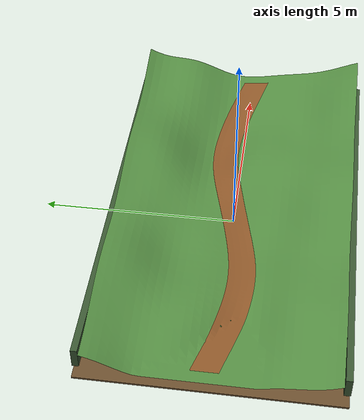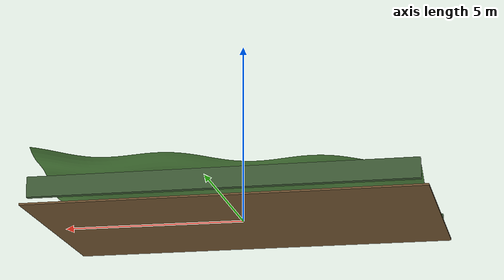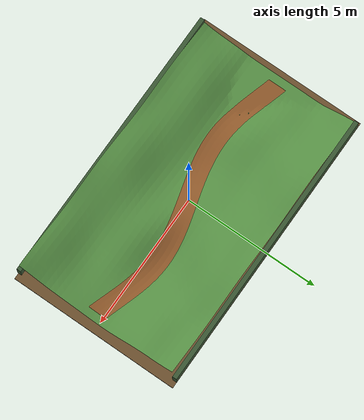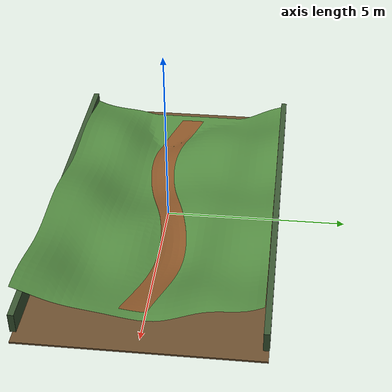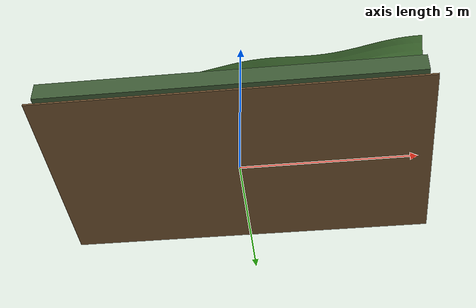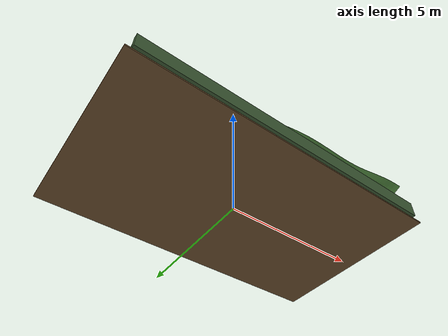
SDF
<?xml version="1.0" ?>
<sdf version="1.6">
  <model name="mountain_terrain">
    <static>true</static>

    <!--
      山地主体使用程序化网格 mesh，而不是少量 box。
      mesh 中包含主坡度、两侧山脊、中央蛇形车道和小幅起伏，展示效果更接近山地。
    -->
    <link name="terrain_mesh">
      <pose>0 0 0 0 0 0</pose>
      <collision name="collision">
        <geometry>
          <mesh>
            <uri>model://mountain_terrain/meshes/mountain_terrain.dae</uri>
          </mesh>
        </geometry>
        <surface>
          <friction>
            <ode>
              <mu>2.0</mu>
              <mu2>2.0</mu2>
            </ode>
          </friction>
          <contact>
            <ode>
              <kp>100000</kp>
              <kd>1.0</kd>
            </ode>
          </contact>
        </surface>
      </collision>
      <visual name="visual">
        <geometry>
          <mesh>
            <uri>model://mountain_terrain/meshes/mountain_terrain.dae</uri>
          </mesh>
        </geometry>
        <material>
          <ambient>0.23 0.38 0.20 1</ambient>
          <diffuse>0.33 0.55 0.26 1</diffuse>
          <specular>0.04 0.04 0.03 1</specular>
        </material>
      </visual>
    </link>

    <!-- 贴合 mesh 高度的蛇形土路，只作为视觉层，帮助展示山地路线。 -->
    <link name="trail_visual">
      <pose>0 0 0 0 0 0</pose>
      <visual name="visual">
        <geometry>
          <mesh>
            <uri>model://mountain_terrain/meshes/mountain_trail.dae</uri>
          </mesh>
        </geometry>
        <material>
          <ambient>0.36 0.22 0.10 1</ambient>
          <diffuse>0.55 0.34 0.16 1</diffuse>
        </material>
      </visual>
    </link>

    <!-- 山地外圈土色底座，帮助从 Gazebo 网格背景中区分实验场地范围。 -->
    <link name="terrain_base">
      <pose>0 0 -0.035 0 0 0</pose>
      <collision name="collision">
        <geometry>
          <box>
            <size>10.8 6.3 0.05</size>
          </box>
        </geometry>
      </collision>
      <visual name="visual">
        <geometry>
          <box>
            <size>10.8 6.3 0.05</size>
          </box>
        </geometry>
        <material>
          <ambient>0.28 0.20 0.12 1</ambient>
          <diffuse>0.42 0.31 0.18 1</diffuse>
        </material>
      </visual>
    </link>

    <!-- 两侧低矮护栏用于强调山路边界，也避免小车演示时跑出场景。 -->
    <link name="left_boundary">
      <pose>0 3.08 0.42 0 0 0</pose>
      <collision name="collision">
        <geometry>
          <box>
            <size>10.4 0.16 0.55</size>
          </box>
        </geometry>
      </collision>
      <visual name="visual">
        <geometry>
          <box>
            <size>10.4 0.16 0.55</size>
          </box>
        </geometry>
        <material>
          <ambient>0.18 0.25 0.15 1</ambient>
          <diffuse>0.23 0.34 0.20 1</diffuse>
        </material>
      </visual>
    </link>

    <link name="right_boundary">
      <pose>0 -3.08 0.42 0 0 0</pose>
      <collision name="collision">
        <geometry>
          <box>
            <size>10.4 0.16 0.55</size>
          </box>
        </geometry>
      </collision>
      <visual name="visual">
        <geometry>
          <box>
            <size>10.4 0.16 0.55</size>
          </box>
        </geometry>
        <material>
          <ambient>0.18 0.25 0.15 1</ambient>
          <diffuse>0.23 0.34 0.20 1</diffuse>
        </material>
      </visual>
    </link>
  </model>
</sdf>
